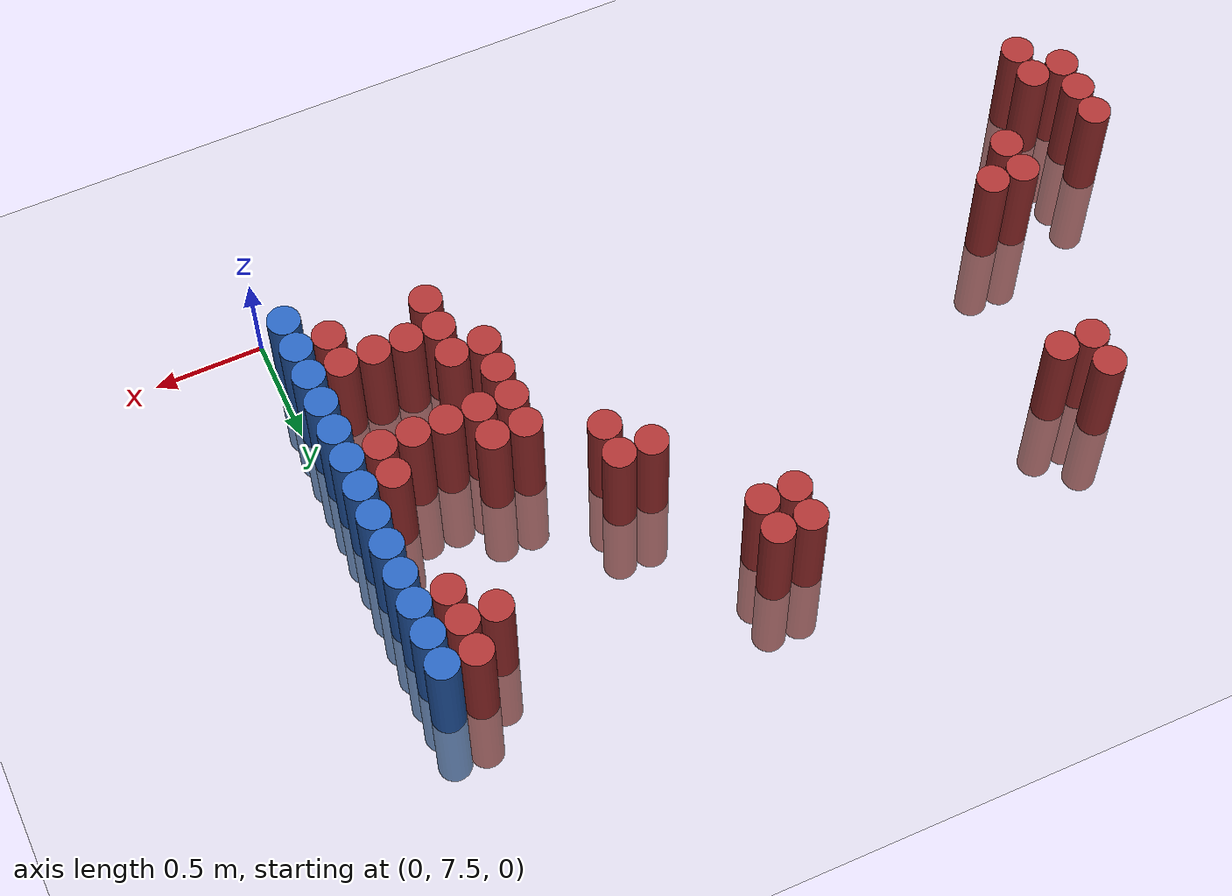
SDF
<sdf version="1.6">
 <world name="default">
  <model name="ground_plane">
   <static>1</static>
   <link name="link">
    <collision name="collision">
     <geometry><plane><normal>0 0 1</normal><size>100 100</size></plane></geometry>
     <surface><friction><ode><mu>100</mu><mu2>50</mu2></ode></friction></surface>
    </collision>
    <visual name="visual">
     <cast_shadows>0</cast_shadows>
     <geometry><plane><normal>0 0 1</normal><size>100 100</size></plane></geometry>
     <material>
      <script><uri>file://media/materials/scripts/gazebo.material</uri><name>Gazebo/Grey</name></script>
     </material>
    </visual>
   </link>
  </model>
  <model name="unit_cylinder_155">
   <static>1</static>
   <pose>-3.825000 7.875000 0.000000 0.000000 0.000000 0.000000</pose>
   <link name="link">
    <inertial>
     <mass>1</mass>
     <inertia><ixx>0.145833</ixx><ixy>0</ixy><ixz>0</ixz><iyy>0.145833</iyy><iyz>0</iyz><izz>0.125</izz></inertia>
    </inertial>
    <collision name="collision">
     <geometry><cylinder><radius>0.075000</radius><length>1</length></cylinder></geometry>
    </collision>
    <visual name="visual">
     <geometry><cylinder><radius>0.075000</radius><length>1</length></cylinder></geometry>
     <material>
      <ambient>0.648000 0.192000 0.192000 1</ambient>
      <diffuse>0.648000 0.192000 0.192000 1</diffuse>
     </material>
     <material>
      <script><name>Gazebo/Grey</name><uri>file://media/materials/scripts/gazebo.material</uri></script>
     </material>
    </visual>
   </link>
  </model>
  <model name="unit_cylinder_156">
   <static>1</static>
   <pose>-3.825000 8.025000 0.000000 0.000000 0.000000 0.000000</pose>
   <link name="link">
    <inertial>
     <mass>1</mass>
     <inertia><ixx>0.145833</ixx><ixy>0</ixy><ixz>0</ixz><iyy>0.145833</iyy><iyz>0</iyz><izz>0.125</izz></inertia>
    </inertial>
    <collision name="collision">
     <geometry><cylinder><radius>0.075000</radius><length>1</length></cylinder></geometry>
    </collision>
    <visual name="visual">
     <geometry><cylinder><radius>0.075000</radius><length>1</length></cylinder></geometry>
     <material>
      <ambient>0.648000 0.192000 0.192000 1</ambient>
      <diffuse>0.648000 0.192000 0.192000 1</diffuse>
     </material>
     <material>
      <script><name>Gazebo/Grey</name><uri>file://media/materials/scripts/gazebo.material</uri></script>
     </material>
    </visual>
   </link>
  </model>
  <model name="unit_cylinder_157">
   <static>1</static>
   <pose>-3.825000 8.175000 0.000000 0.000000 0.000000 0.000000</pose>
   <link name="link">
    <inertial>
     <mass>1</mass>
     <inertia><ixx>0.145833</ixx><ixy>0</ixy><ixz>0</ixz><iyy>0.145833</iyy><iyz>0</iyz><izz>0.125</izz></inertia>
    </inertial>
    <collision name="collision">
     <geometry><cylinder><radius>0.075000</radius><length>1</length></cylinder></geometry>
    </collision>
    <visual name="visual">
     <geometry><cylinder><radius>0.075000</radius><length>1</length></cylinder></geometry>
     <material>
      <ambient>0.648000 0.192000 0.192000 1</ambient>
      <diffuse>0.648000 0.192000 0.192000 1</diffuse>
     </material>
     <material>
      <script><name>Gazebo/Grey</name><uri>file://media/materials/scripts/gazebo.material</uri></script>
     </material>
    </visual>
   </link>
  </model>
  <model name="unit_cylinder_162">
   <static>1</static>
   <pose>-3.675000 7.725000 0.000000 0.000000 0.000000 0.000000</pose>
   <link name="link">
    <inertial>
     <mass>1</mass>
     <inertia><ixx>0.145833</ixx><ixy>0</ixy><ixz>0</ixz><iyy>0.145833</iyy><iyz>0</iyz><izz>0.125</izz></inertia>
    </inertial>
    <collision name="collision">
     <geometry><cylinder><radius>0.075000</radius><length>1</length></cylinder></geometry>
    </collision>
    <visual name="visual">
     <geometry><cylinder><radius>0.075000</radius><length>1</length></cylinder></geometry>
     <material>
      <ambient>0.648000 0.192000 0.192000 1</ambient>
      <diffuse>0.648000 0.192000 0.192000 1</diffuse>
     </material>
     <material>
      <script><name>Gazebo/Grey</name><uri>file://media/materials/scripts/gazebo.material</uri></script>
     </material>
    </visual>
   </link>
  </model>
  <model name="unit_cylinder_163">
   <static>1</static>
   <pose>-3.675000 7.875000 0.000000 0.000000 0.000000 0.000000</pose>
   <link name="link">
    <inertial>
     <mass>1</mass>
     <inertia><ixx>0.145833</ixx><ixy>0</ixy><ixz>0</ixz><iyy>0.145833</iyy><iyz>0</iyz><izz>0.125</izz></inertia>
    </inertial>
    <collision name="collision">
     <geometry><cylinder><radius>0.075000</radius><length>1</length></cylinder></geometry>
    </collision>
    <visual name="visual">
     <geometry><cylinder><radius>0.075000</radius><length>1</length></cylinder></geometry>
     <material>
      <ambient>0.648000 0.192000 0.192000 1</ambient>
      <diffuse>0.648000 0.192000 0.192000 1</diffuse>
     </material>
     <material>
      <script><name>Gazebo/Grey</name><uri>file://media/materials/scripts/gazebo.material</uri></script>
     </material>
    </visual>
   </link>
  </model>
  <model name="unit_cylinder_165">
   <static>1</static>
   <pose>-3.375000 8.175000 0.000000 0.000000 0.000000 0.000000</pose>
   <link name="link">
    <inertial>
     <mass>1</mass>
     <inertia><ixx>0.145833</ixx><ixy>0</ixy><ixz>0</ixz><iyy>0.145833</iyy><iyz>0</iyz><izz>0.125</izz></inertia>
    </inertial>
    <collision name="collision">
     <geometry><cylinder><radius>0.075000</radius><length>1</length></cylinder></geometry>
    </collision>
    <visual name="visual">
     <geometry><cylinder><radius>0.075000</radius><length>1</length></cylinder></geometry>
     <material>
      <ambient>0.648000 0.192000 0.192000 1</ambient>
      <diffuse>0.648000 0.192000 0.192000 1</diffuse>
     </material>
     <material>
      <script><name>Gazebo/Grey</name><uri>file://media/materials/scripts/gazebo.material</uri></script>
     </material>
    </visual>
   </link>
  </model>
  <model name="unit_cylinder_166">
   <static>1</static>
   <pose>-3.375000 8.325000 0.000000 0.000000 0.000000 0.000000</pose>
   <link name="link">
    <inertial>
     <mass>1</mass>
     <inertia><ixx>0.145833</ixx><ixy>0</ixy><ixz>0</ixz><iyy>0.145833</iyy><iyz>0</iyz><izz>0.125</izz></inertia>
    </inertial>
    <collision name="collision">
     <geometry><cylinder><radius>0.075000</radius><length>1</length></cylinder></geometry>
    </collision>
    <visual name="visual">
     <geometry><cylinder><radius>0.075000</radius><length>1</length></cylinder></geometry>
     <material>
      <ambient>0.648000 0.192000 0.192000 1</ambient>
      <diffuse>0.648000 0.192000 0.192000 1</diffuse>
     </material>
     <material>
      <script><name>Gazebo/Grey</name><uri>file://media/materials/scripts/gazebo.material</uri></script>
     </material>
    </visual>
   </link>
  </model>
  <model name="unit_cylinder_167">
   <static>1</static>
   <pose>-3.225000 8.325000 0.000000 0.000000 0.000000 0.000000</pose>
   <link name="link">
    <inertial>
     <mass>1</mass>
     <inertia><ixx>0.145833</ixx><ixy>0</ixy><ixz>0</ixz><iyy>0.145833</iyy><iyz>0</iyz><izz>0.125</izz></inertia>
    </inertial>
    <collision name="collision">
     <geometry><cylinder><radius>0.075000</radius><length>1</length></cylinder></geometry>
    </collision>
    <visual name="visual">
     <geometry><cylinder><radius>0.075000</radius><length>1</length></cylinder></geometry>
     <material>
      <ambient>0.648000 0.192000 0.192000 1</ambient>
      <diffuse>0.648000 0.192000 0.192000 1</diffuse>
     </material>
     <material>
      <script><name>Gazebo/Grey</name><uri>file://media/materials/scripts/gazebo.material</uri></script>
     </material>
    </visual>
   </link>
  </model>
  <model name="unit_cylinder_168">
   <static>1</static>
   <pose>-3.225000 9.225000 0.000000 0.000000 0.000000 0.000000</pose>
   <link name="link">
    <inertial>
     <mass>1</mass>
     <inertia><ixx>0.145833</ixx><ixy>0</ixy><ixz>0</ixz><iyy>0.145833</iyy><iyz>0</iyz><izz>0.125</izz></inertia>
    </inertial>
    <collision name="collision">
     <geometry><cylinder><radius>0.075000</radius><length>1</length></cylinder></geometry>
    </collision>
    <visual name="visual">
     <geometry><cylinder><radius>0.075000</radius><length>1</length></cylinder></geometry>
     <material>
      <ambient>0.648000 0.192000 0.192000 1</ambient>
      <diffuse>0.648000 0.192000 0.192000 1</diffuse>
     </material>
     <material>
      <script><name>Gazebo/Grey</name><uri>file://media/materials/scripts/gazebo.material</uri></script>
     </material>
    </visual>
   </link>
  </model>
  <model name="unit_cylinder_169">
   <static>1</static>
   <pose>-3.225000 9.375000 0.000000 0.000000 0.000000 0.000000</pose>
   <link name="link">
    <inertial>
     <mass>1</mass>
     <inertia><ixx>0.145833</ixx><ixy>0</ixy><ixz>0</ixz><iyy>0.145833</iyy><iyz>0</iyz><izz>0.125</izz></inertia>
    </inertial>
    <collision name="collision">
     <geometry><cylinder><radius>0.075000</radius><length>1</length></cylinder></geometry>
    </collision>
    <visual name="visual">
     <geometry><cylinder><radius>0.075000</radius><length>1</length></cylinder></geometry>
     <material>
      <ambient>0.648000 0.192000 0.192000 1</ambient>
      <diffuse>0.648000 0.192000 0.192000 1</diffuse>
     </material>
     <material>
      <script><name>Gazebo/Grey</name><uri>file://media/materials/scripts/gazebo.material</uri></script>
     </material>
    </visual>
   </link>
  </model>
  <model name="unit_cylinder_170">
   <static>1</static>
   <pose>-3.075000 9.225000 0.000000 0.000000 0.000000 0.000000</pose>
   <link name="link">
    <inertial>
     <mass>1</mass>
     <inertia><ixx>0.145833</ixx><ixy>0</ixy><ixz>0</ixz><iyy>0.145833</iyy><iyz>0</iyz><izz>0.125</izz></inertia>
    </inertial>
    <collision name="collision">
     <geometry><cylinder><radius>0.075000</radius><length>1</length></cylinder></geometry>
    </collision>
    <visual name="visual">
     <geometry><cylinder><radius>0.075000</radius><length>1</length></cylinder></geometry>
     <material>
      <ambient>0.648000 0.192000 0.192000 1</ambient>
      <diffuse>0.648000 0.192000 0.192000 1</diffuse>
     </material>
     <material>
      <script><name>Gazebo/Grey</name><uri>file://media/materials/scripts/gazebo.material</uri></script>
     </material>
    </visual>
   </link>
  </model>
  <model name="unit_cylinder_177">
   <static>1</static>
   <pose>-1.725000 9.375000 0.000000 0.000000 0.000000 0.000000</pose>
   <link name="link">
    <inertial>
     <mass>1</mass>
     <inertia><ixx>0.145833</ixx><ixy>0</ixy><ixz>0</ixz><iyy>0.145833</iyy><iyz>0</iyz><izz>0.125</izz></inertia>
    </inertial>
    <collision name="collision">
     <geometry><cylinder><radius>0.075000</radius><length>1</length></cylinder></geometry>
    </collision>
    <visual name="visual">
     <geometry><cylinder><radius>0.075000</radius><length>1</length></cylinder></geometry>
     <material>
      <ambient>0.648000 0.192000 0.192000 1</ambient>
      <diffuse>0.648000 0.192000 0.192000 1</diffuse>
     </material>
     <material>
      <script><name>Gazebo/Grey</name><uri>file://media/materials/scripts/gazebo.material</uri></script>
     </material>
    </visual>
   </link>
  </model>
  <model name="unit_cylinder_178">
   <static>1</static>
   <pose>-1.725000 9.525000 0.000000 0.000000 0.000000 0.000000</pose>
   <link name="link">
    <inertial>
     <mass>1</mass>
     <inertia><ixx>0.145833</ixx><ixy>0</ixy><ixz>0</ixz><iyy>0.145833</iyy><iyz>0</iyz><izz>0.125</izz></inertia>
    </inertial>
    <collision name="collision">
     <geometry><cylinder><radius>0.075000</radius><length>1</length></cylinder></geometry>
    </collision>
    <visual name="visual">
     <geometry><cylinder><radius>0.075000</radius><length>1</length></cylinder></geometry>
     <material>
      <ambient>0.648000 0.192000 0.192000 1</ambient>
      <diffuse>0.648000 0.192000 0.192000 1</diffuse>
     </material>
     <material>
      <script><name>Gazebo/Grey</name><uri>file://media/materials/scripts/gazebo.material</uri></script>
     </material>
    </visual>
   </link>
  </model>
  <model name="unit_cylinder_181">
   <static>1</static>
   <pose>-1.575000 9.375000 0.000000 0.000000 0.000000 0.000000</pose>
   <link name="link">
    <inertial>
     <mass>1</mass>
     <inertia><ixx>0.145833</ixx><ixy>0</ixy><ixz>0</ixz><iyy>0.145833</iyy><iyz>0</iyz><izz>0.125</izz></inertia>
    </inertial>
    <collision name="collision">
     <geometry><cylinder><radius>0.075000</radius><length>1</length></cylinder></geometry>
    </collision>
    <visual name="visual">
     <geometry><cylinder><radius>0.075000</radius><length>1</length></cylinder></geometry>
     <material>
      <ambient>0.648000 0.192000 0.192000 1</ambient>
      <diffuse>0.648000 0.192000 0.192000 1</diffuse>
     </material>
     <material>
      <script><name>Gazebo/Grey</name><uri>file://media/materials/scripts/gazebo.material</uri></script>
     </material>
    </visual>
   </link>
  </model>
  <model name="unit_cylinder_182">
   <static>1</static>
   <pose>-1.575000 9.525000 0.000000 0.000000 0.000000 0.000000</pose>
   <link name="link">
    <inertial>
     <mass>1</mass>
     <inertia><ixx>0.145833</ixx><ixy>0</ixy><ixz>0</ixz><iyy>0.145833</iyy><iyz>0</iyz><izz>0.125</izz></inertia>
    </inertial>
    <collision name="collision">
     <geometry><cylinder><radius>0.075000</radius><length>1</length></cylinder></geometry>
    </collision>
    <visual name="visual">
     <geometry><cylinder><radius>0.075000</radius><length>1</length></cylinder></geometry>
     <material>
      <ambient>0.648000 0.192000 0.192000 1</ambient>
      <diffuse>0.648000 0.192000 0.192000 1</diffuse>
     </material>
     <material>
      <script><name>Gazebo/Grey</name><uri>file://media/materials/scripts/gazebo.material</uri></script>
     </material>
    </visual>
   </link>
  </model>
  <model name="unit_cylinder_186">
   <static>1</static>
   <pose>-1.275000 8.925000 0.000000 0.000000 0.000000 0.000000</pose>
   <link name="link">
    <inertial>
     <mass>1</mass>
     <inertia><ixx>0.145833</ixx><ixy>0</ixy><ixz>0</ixz><iyy>0.145833</iyy><iyz>0</iyz><izz>0.125</izz></inertia>
    </inertial>
    <collision name="collision">
     <geometry><cylinder><radius>0.075000</radius><length>1</length></cylinder></geometry>
    </collision>
    <visual name="visual">
     <geometry><cylinder><radius>0.075000</radius><length>1</length></cylinder></geometry>
     <material>
      <ambient>0.648000 0.192000 0.192000 1</ambient>
      <diffuse>0.648000 0.192000 0.192000 1</diffuse>
     </material>
     <material>
      <script><name>Gazebo/Grey</name><uri>file://media/materials/scripts/gazebo.material</uri></script>
     </material>
    </visual>
   </link>
  </model>
  <model name="unit_cylinder_194">
   <static>1</static>
   <pose>-1.125000 8.775000 0.000000 0.000000 0.000000 0.000000</pose>
   <link name="link">
    <inertial>
     <mass>1</mass>
     <inertia><ixx>0.145833</ixx><ixy>0</ixy><ixz>0</ixz><iyy>0.145833</iyy><iyz>0</iyz><izz>0.125</izz></inertia>
    </inertial>
    <collision name="collision">
     <geometry><cylinder><radius>0.075000</radius><length>1</length></cylinder></geometry>
    </collision>
    <visual name="visual">
     <geometry><cylinder><radius>0.075000</radius><length>1</length></cylinder></geometry>
     <material>
      <ambient>0.648000 0.192000 0.192000 1</ambient>
      <diffuse>0.648000 0.192000 0.192000 1</diffuse>
     </material>
     <material>
      <script><name>Gazebo/Grey</name><uri>file://media/materials/scripts/gazebo.material</uri></script>
     </material>
    </visual>
   </link>
  </model>
  <model name="unit_cylinder_195">
   <static>1</static>
   <pose>-1.125000 8.925000 0.000000 0.000000 0.000000 0.000000</pose>
   <link name="link">
    <inertial>
     <mass>1</mass>
     <inertia><ixx>0.145833</ixx><ixy>0</ixy><ixz>0</ixz><iyy>0.145833</iyy><iyz>0</iyz><izz>0.125</izz></inertia>
    </inertial>
    <collision name="collision">
     <geometry><cylinder><radius>0.075000</radius><length>1</length></cylinder></geometry>
    </collision>
    <visual name="visual">
     <geometry><cylinder><radius>0.075000</radius><length>1</length></cylinder></geometry>
     <material>
      <ambient>0.648000 0.192000 0.192000 1</ambient>
      <diffuse>0.648000 0.192000 0.192000 1</diffuse>
     </material>
     <material>
      <script><name>Gazebo/Grey</name><uri>file://media/materials/scripts/gazebo.material</uri></script>
     </material>
    </visual>
   </link>
  </model>
  <model name="unit_cylinder_207">
   <static>1</static>
   <pose>-0.825000 8.175000 0.000000 0.000000 0.000000 0.000000</pose>
   <link name="link">
    <inertial>
     <mass>1</mass>
     <inertia><ixx>0.145833</ixx><ixy>0</ixy><ixz>0</ixz><iyy>0.145833</iyy><iyz>0</iyz><izz>0.125</izz></inertia>
    </inertial>
    <collision name="collision">
     <geometry><cylinder><radius>0.075000</radius><length>1</length></cylinder></geometry>
    </collision>
    <visual name="visual">
     <geometry><cylinder><radius>0.075000</radius><length>1</length></cylinder></geometry>
     <material>
      <ambient>0.648000 0.192000 0.192000 1</ambient>
      <diffuse>0.648000 0.192000 0.192000 1</diffuse>
     </material>
     <material>
      <script><name>Gazebo/Grey</name><uri>file://media/materials/scripts/gazebo.material</uri></script>
     </material>
    </visual>
   </link>
  </model>
  <model name="unit_cylinder_208">
   <static>1</static>
   <pose>-0.825000 8.325000 0.000000 0.000000 0.000000 0.000000</pose>
   <link name="link">
    <inertial>
     <mass>1</mass>
     <inertia><ixx>0.145833</ixx><ixy>0</ixy><ixz>0</ixz><iyy>0.145833</iyy><iyz>0</iyz><izz>0.125</izz></inertia>
    </inertial>
    <collision name="collision">
     <geometry><cylinder><radius>0.075000</radius><length>1</length></cylinder></geometry>
    </collision>
    <visual name="visual">
     <geometry><cylinder><radius>0.075000</radius><length>1</length></cylinder></geometry>
     <material>
      <ambient>0.648000 0.192000 0.192000 1</ambient>
      <diffuse>0.648000 0.192000 0.192000 1</diffuse>
     </material>
     <material>
      <script><name>Gazebo/Grey</name><uri>file://media/materials/scripts/gazebo.material</uri></script>
     </material>
    </visual>
   </link>
  </model>
  <model name="unit_cylinder_209">
   <static>1</static>
   <pose>-0.825000 8.475000 0.000000 0.000000 0.000000 0.000000</pose>
   <link name="link">
    <inertial>
     <mass>1</mass>
     <inertia><ixx>0.145833</ixx><ixy>0</ixy><ixz>0</ixz><iyy>0.145833</iyy><iyz>0</iyz><izz>0.125</izz></inertia>
    </inertial>
    <collision name="collision">
     <geometry><cylinder><radius>0.075000</radius><length>1</length></cylinder></geometry>
    </collision>
    <visual name="visual">
     <geometry><cylinder><radius>0.075000</radius><length>1</length></cylinder></geometry>
     <material>
      <ambient>0.648000 0.192000 0.192000 1</ambient>
      <diffuse>0.648000 0.192000 0.192000 1</diffuse>
     </material>
     <material>
      <script><name>Gazebo/Grey</name><uri>file://media/materials/scripts/gazebo.material</uri></script>
     </material>
    </visual>
   </link>
  </model>
  <model name="unit_cylinder_210">
   <static>1</static>
   <pose>-0.825000 8.625000 0.000000 0.000000 0.000000 0.000000</pose>
   <link name="link">
    <inertial>
     <mass>1</mass>
     <inertia><ixx>0.145833</ixx><ixy>0</ixy><ixz>0</ixz><iyy>0.145833</iyy><iyz>0</iyz><izz>0.125</izz></inertia>
    </inertial>
    <collision name="collision">
     <geometry><cylinder><radius>0.075000</radius><length>1</length></cylinder></geometry>
    </collision>
    <visual name="visual">
     <geometry><cylinder><radius>0.075000</radius><length>1</length></cylinder></geometry>
     <material>
      <ambient>0.648000 0.192000 0.192000 1</ambient>
      <diffuse>0.648000 0.192000 0.192000 1</diffuse>
     </material>
     <material>
      <script><name>Gazebo/Grey</name><uri>file://media/materials/scripts/gazebo.material</uri></script>
     </material>
    </visual>
   </link>
  </model>
  <model name="unit_cylinder_211">
   <static>1</static>
   <pose>-0.675000 7.875000 0.000000 0.000000 0.000000 0.000000</pose>
   <link name="link">
    <inertial>
     <mass>1</mass>
     <inertia><ixx>0.145833</ixx><ixy>0</ixy><ixz>0</ixz><iyy>0.145833</iyy><iyz>0</iyz><izz>0.125</izz></inertia>
    </inertial>
    <collision name="collision">
     <geometry><cylinder><radius>0.075000</radius><length>1</length></cylinder></geometry>
    </collision>
    <visual name="visual">
     <geometry><cylinder><radius>0.075000</radius><length>1</length></cylinder></geometry>
     <material>
      <ambient>0.648000 0.192000 0.192000 1</ambient>
      <diffuse>0.648000 0.192000 0.192000 1</diffuse>
     </material>
     <material>
      <script><name>Gazebo/Grey</name><uri>file://media/materials/scripts/gazebo.material</uri></script>
     </material>
    </visual>
   </link>
  </model>
  <model name="unit_cylinder_212">
   <static>1</static>
   <pose>-0.675000 8.025000 0.000000 0.000000 0.000000 0.000000</pose>
   <link name="link">
    <inertial>
     <mass>1</mass>
     <inertia><ixx>0.145833</ixx><ixy>0</ixy><ixz>0</ixz><iyy>0.145833</iyy><iyz>0</iyz><izz>0.125</izz></inertia>
    </inertial>
    <collision name="collision">
     <geometry><cylinder><radius>0.075000</radius><length>1</length></cylinder></geometry>
    </collision>
    <visual name="visual">
     <geometry><cylinder><radius>0.075000</radius><length>1</length></cylinder></geometry>
     <material>
      <ambient>0.648000 0.192000 0.192000 1</ambient>
      <diffuse>0.648000 0.192000 0.192000 1</diffuse>
     </material>
     <material>
      <script><name>Gazebo/Grey</name><uri>file://media/materials/scripts/gazebo.material</uri></script>
     </material>
    </visual>
   </link>
  </model>
  <model name="unit_cylinder_213">
   <static>1</static>
   <pose>-0.675000 8.175000 0.000000 0.000000 0.000000 0.000000</pose>
   <link name="link">
    <inertial>
     <mass>1</mass>
     <inertia><ixx>0.145833</ixx><ixy>0</ixy><ixz>0</ixz><iyy>0.145833</iyy><iyz>0</iyz><izz>0.125</izz></inertia>
    </inertial>
    <collision name="collision">
     <geometry><cylinder><radius>0.075000</radius><length>1</length></cylinder></geometry>
    </collision>
    <visual name="visual">
     <geometry><cylinder><radius>0.075000</radius><length>1</length></cylinder></geometry>
     <material>
      <ambient>0.648000 0.192000 0.192000 1</ambient>
      <diffuse>0.648000 0.192000 0.192000 1</diffuse>
     </material>
     <material>
      <script><name>Gazebo/Grey</name><uri>file://media/materials/scripts/gazebo.material</uri></script>
     </material>
    </visual>
   </link>
  </model>
  <model name="unit_cylinder_214">
   <static>1</static>
   <pose>-0.675000 8.475000 0.000000 0.000000 0.000000 0.000000</pose>
   <link name="link">
    <inertial>
     <mass>1</mass>
     <inertia><ixx>0.145833</ixx><ixy>0</ixy><ixz>0</ixz><iyy>0.145833</iyy><iyz>0</iyz><izz>0.125</izz></inertia>
    </inertial>
    <collision name="collision">
     <geometry><cylinder><radius>0.075000</radius><length>1</length></cylinder></geometry>
    </collision>
    <visual name="visual">
     <geometry><cylinder><radius>0.075000</radius><length>1</length></cylinder></geometry>
     <material>
      <ambient>0.648000 0.192000 0.192000 1</ambient>
      <diffuse>0.648000 0.192000 0.192000 1</diffuse>
     </material>
     <material>
      <script><name>Gazebo/Grey</name><uri>file://media/materials/scripts/gazebo.material</uri></script>
     </material>
    </visual>
   </link>
  </model>
  <model name="unit_cylinder_215">
   <static>1</static>
   <pose>-0.675000 8.625000 0.000000 0.000000 0.000000 0.000000</pose>
   <link name="link">
    <inertial>
     <mass>1</mass>
     <inertia><ixx>0.145833</ixx><ixy>0</ixy><ixz>0</ixz><iyy>0.145833</iyy><iyz>0</iyz><izz>0.125</izz></inertia>
    </inertial>
    <collision name="collision">
     <geometry><cylinder><radius>0.075000</radius><length>1</length></cylinder></geometry>
    </collision>
    <visual name="visual">
     <geometry><cylinder><radius>0.075000</radius><length>1</length></cylinder></geometry>
     <material>
      <ambient>0.648000 0.192000 0.192000 1</ambient>
      <diffuse>0.648000 0.192000 0.192000 1</diffuse>
     </material>
     <material>
      <script><name>Gazebo/Grey</name><uri>file://media/materials/scripts/gazebo.material</uri></script>
     </material>
    </visual>
   </link>
  </model>
  <model name="unit_cylinder_216">
   <static>1</static>
   <pose>-0.525000 8.025000 0.000000 0.000000 0.000000 0.000000</pose>
   <link name="link">
    <inertial>
     <mass>1</mass>
     <inertia><ixx>0.145833</ixx><ixy>0</ixy><ixz>0</ixz><iyy>0.145833</iyy><iyz>0</iyz><izz>0.125</izz></inertia>
    </inertial>
    <collision name="collision">
     <geometry><cylinder><radius>0.075000</radius><length>1</length></cylinder></geometry>
    </collision>
    <visual name="visual">
     <geometry><cylinder><radius>0.075000</radius><length>1</length></cylinder></geometry>
     <material>
      <ambient>0.648000 0.192000 0.192000 1</ambient>
      <diffuse>0.648000 0.192000 0.192000 1</diffuse>
     </material>
     <material>
      <script><name>Gazebo/Grey</name><uri>file://media/materials/scripts/gazebo.material</uri></script>
     </material>
    </visual>
   </link>
  </model>
  <model name="unit_cylinder_217">
   <static>1</static>
   <pose>-0.525000 8.475000 0.000000 0.000000 0.000000 0.000000</pose>
   <link name="link">
    <inertial>
     <mass>1</mass>
     <inertia><ixx>0.145833</ixx><ixy>0</ixy><ixz>0</ixz><iyy>0.145833</iyy><iyz>0</iyz><izz>0.125</izz></inertia>
    </inertial>
    <collision name="collision">
     <geometry><cylinder><radius>0.075000</radius><length>1</length></cylinder></geometry>
    </collision>
    <visual name="visual">
     <geometry><cylinder><radius>0.075000</radius><length>1</length></cylinder></geometry>
     <material>
      <ambient>0.648000 0.192000 0.192000 1</ambient>
      <diffuse>0.648000 0.192000 0.192000 1</diffuse>
     </material>
     <material>
      <script><name>Gazebo/Grey</name><uri>file://media/materials/scripts/gazebo.material</uri></script>
     </material>
    </visual>
   </link>
  </model>
  <model name="unit_cylinder_218">
   <static>1</static>
   <pose>-0.375000 8.025000 0.000000 0.000000 0.000000 0.000000</pose>
   <link name="link">
    <inertial>
     <mass>1</mass>
     <inertia><ixx>0.145833</ixx><ixy>0</ixy><ixz>0</ixz><iyy>0.145833</iyy><iyz>0</iyz><izz>0.125</izz></inertia>
    </inertial>
    <collision name="collision">
     <geometry><cylinder><radius>0.075000</radius><length>1</length></cylinder></geometry>
    </collision>
    <visual name="visual">
     <geometry><cylinder><radius>0.075000</radius><length>1</length></cylinder></geometry>
     <material>
      <ambient>0.648000 0.192000 0.192000 1</ambient>
      <diffuse>0.648000 0.192000 0.192000 1</diffuse>
     </material>
     <material>
      <script><name>Gazebo/Grey</name><uri>file://media/materials/scripts/gazebo.material</uri></script>
     </material>
    </visual>
   </link>
  </model>
  <model name="unit_cylinder_219">
   <static>1</static>
   <pose>-0.375000 8.475000 0.000000 0.000000 0.000000 0.000000</pose>
   <link name="link">
    <inertial>
     <mass>1</mass>
     <inertia><ixx>0.145833</ixx><ixy>0</ixy><ixz>0</ixz><iyy>0.145833</iyy><iyz>0</iyz><izz>0.125</izz></inertia>
    </inertial>
    <collision name="collision">
     <geometry><cylinder><radius>0.075000</radius><length>1</length></cylinder></geometry>
    </collision>
    <visual name="visual">
     <geometry><cylinder><radius>0.075000</radius><length>1</length></cylinder></geometry>
     <material>
      <ambient>0.648000 0.192000 0.192000 1</ambient>
      <diffuse>0.648000 0.192000 0.192000 1</diffuse>
     </material>
     <material>
      <script><name>Gazebo/Grey</name><uri>file://media/materials/scripts/gazebo.material</uri></script>
     </material>
    </visual>
   </link>
  </model>
  <model name="unit_cylinder_220">
   <static>1</static>
   <pose>-0.375000 9.375000 0.000000 0.000000 0.000000 0.000000</pose>
   <link name="link">
    <inertial>
     <mass>1</mass>
     <inertia><ixx>0.145833</ixx><ixy>0</ixy><ixz>0</ixz><iyy>0.145833</iyy><iyz>0</iyz><izz>0.125</izz></inertia>
    </inertial>
    <collision name="collision">
     <geometry><cylinder><radius>0.075000</radius><length>1</length></cylinder></geometry>
    </collision>
    <visual name="visual">
     <geometry><cylinder><radius>0.075000</radius><length>1</length></cylinder></geometry>
     <material>
      <ambient>0.648000 0.192000 0.192000 1</ambient>
      <diffuse>0.648000 0.192000 0.192000 1</diffuse>
     </material>
     <material>
      <script><name>Gazebo/Grey</name><uri>file://media/materials/scripts/gazebo.material</uri></script>
     </material>
    </visual>
   </link>
  </model>
  <model name="unit_cylinder_223">
   <static>1</static>
   <pose>-0.225000 7.875000 0.000000 0.000000 0.000000 0.000000</pose>
   <link name="link">
    <inertial>
     <mass>1</mass>
     <inertia><ixx>0.145833</ixx><ixy>0</ixy><ixz>0</ixz><iyy>0.145833</iyy><iyz>0</iyz><izz>0.125</izz></inertia>
    </inertial>
    <collision name="collision">
     <geometry><cylinder><radius>0.075000</radius><length>1</length></cylinder></geometry>
    </collision>
    <visual name="visual">
     <geometry><cylinder><radius>0.075000</radius><length>1</length></cylinder></geometry>
     <material>
      <ambient>0.648000 0.192000 0.192000 1</ambient>
      <diffuse>0.648000 0.192000 0.192000 1</diffuse>
     </material>
     <material>
      <script><name>Gazebo/Grey</name><uri>file://media/materials/scripts/gazebo.material</uri></script>
     </material>
    </visual>
   </link>
  </model>
  <model name="unit_cylinder_224">
   <static>1</static>
   <pose>-0.225000 8.025000 0.000000 0.000000 0.000000 0.000000</pose>
   <link name="link">
    <inertial>
     <mass>1</mass>
     <inertia><ixx>0.145833</ixx><ixy>0</ixy><ixz>0</ixz><iyy>0.145833</iyy><iyz>0</iyz><izz>0.125</izz></inertia>
    </inertial>
    <collision name="collision">
     <geometry><cylinder><radius>0.075000</radius><length>1</length></cylinder></geometry>
    </collision>
    <visual name="visual">
     <geometry><cylinder><radius>0.075000</radius><length>1</length></cylinder></geometry>
     <material>
      <ambient>0.648000 0.192000 0.192000 1</ambient>
      <diffuse>0.648000 0.192000 0.192000 1</diffuse>
     </material>
     <material>
      <script><name>Gazebo/Grey</name><uri>file://media/materials/scripts/gazebo.material</uri></script>
     </material>
    </visual>
   </link>
  </model>
  <model name="unit_cylinder_225">
   <static>1</static>
   <pose>-0.225000 8.475000 0.000000 0.000000 0.000000 0.000000</pose>
   <link name="link">
    <inertial>
     <mass>1</mass>
     <inertia><ixx>0.145833</ixx><ixy>0</ixy><ixz>0</ixz><iyy>0.145833</iyy><iyz>0</iyz><izz>0.125</izz></inertia>
    </inertial>
    <collision name="collision">
     <geometry><cylinder><radius>0.075000</radius><length>1</length></cylinder></geometry>
    </collision>
    <visual name="visual">
     <geometry><cylinder><radius>0.075000</radius><length>1</length></cylinder></geometry>
     <material>
      <ambient>0.648000 0.192000 0.192000 1</ambient>
      <diffuse>0.648000 0.192000 0.192000 1</diffuse>
     </material>
     <material>
      <script><name>Gazebo/Grey</name><uri>file://media/materials/scripts/gazebo.material</uri></script>
     </material>
    </visual>
   </link>
  </model>
  <model name="unit_cylinder_226">
   <static>1</static>
   <pose>-0.225000 8.625000 0.000000 0.000000 0.000000 0.000000</pose>
   <link name="link">
    <inertial>
     <mass>1</mass>
     <inertia><ixx>0.145833</ixx><ixy>0</ixy><ixz>0</ixz><iyy>0.145833</iyy><iyz>0</iyz><izz>0.125</izz></inertia>
    </inertial>
    <collision name="collision">
     <geometry><cylinder><radius>0.075000</radius><length>1</length></cylinder></geometry>
    </collision>
    <visual name="visual">
     <geometry><cylinder><radius>0.075000</radius><length>1</length></cylinder></geometry>
     <material>
      <ambient>0.648000 0.192000 0.192000 1</ambient>
      <diffuse>0.648000 0.192000 0.192000 1</diffuse>
     </material>
     <material>
      <script><name>Gazebo/Grey</name><uri>file://media/materials/scripts/gazebo.material</uri></script>
     </material>
    </visual>
   </link>
  </model>
  <model name="unit_cylinder_227">
   <static>1</static>
   <pose>-0.225000 9.225000 0.000000 0.000000 0.000000 0.000000</pose>
   <link name="link">
    <inertial>
     <mass>1</mass>
     <inertia><ixx>0.145833</ixx><ixy>0</ixy><ixz>0</ixz><iyy>0.145833</iyy><iyz>0</iyz><izz>0.125</izz></inertia>
    </inertial>
    <collision name="collision">
     <geometry><cylinder><radius>0.075000</radius><length>1</length></cylinder></geometry>
    </collision>
    <visual name="visual">
     <geometry><cylinder><radius>0.075000</radius><length>1</length></cylinder></geometry>
     <material>
      <ambient>0.648000 0.192000 0.192000 1</ambient>
      <diffuse>0.648000 0.192000 0.192000 1</diffuse>
     </material>
     <material>
      <script><name>Gazebo/Grey</name><uri>file://media/materials/scripts/gazebo.material</uri></script>
     </material>
    </visual>
   </link>
  </model>
  <model name="unit_cylinder_228">
   <static>1</static>
   <pose>-0.225000 9.375000 0.000000 0.000000 0.000000 0.000000</pose>
   <link name="link">
    <inertial>
     <mass>1</mass>
     <inertia><ixx>0.145833</ixx><ixy>0</ixy><ixz>0</ixz><iyy>0.145833</iyy><iyz>0</iyz><izz>0.125</izz></inertia>
    </inertial>
    <collision name="collision">
     <geometry><cylinder><radius>0.075000</radius><length>1</length></cylinder></geometry>
    </collision>
    <visual name="visual">
     <geometry><cylinder><radius>0.075000</radius><length>1</length></cylinder></geometry>
     <material>
      <ambient>0.648000 0.192000 0.192000 1</ambient>
      <diffuse>0.648000 0.192000 0.192000 1</diffuse>
     </material>
     <material>
      <script><name>Gazebo/Grey</name><uri>file://media/materials/scripts/gazebo.material</uri></script>
     </material>
    </visual>
   </link>
  </model>
  <model name="unit_cylinder_229">
   <static>1</static>
   <pose>-0.225000 9.525000 0.000000 0.000000 0.000000 0.000000</pose>
   <link name="link">
    <inertial>
     <mass>1</mass>
     <inertia><ixx>0.145833</ixx><ixy>0</ixy><ixz>0</ixz><iyy>0.145833</iyy><iyz>0</iyz><izz>0.125</izz></inertia>
    </inertial>
    <collision name="collision">
     <geometry><cylinder><radius>0.075000</radius><length>1</length></cylinder></geometry>
    </collision>
    <visual name="visual">
     <geometry><cylinder><radius>0.075000</radius><length>1</length></cylinder></geometry>
     <material>
      <ambient>0.648000 0.192000 0.192000 1</ambient>
      <diffuse>0.648000 0.192000 0.192000 1</diffuse>
     </material>
     <material>
      <script><name>Gazebo/Grey</name><uri>file://media/materials/scripts/gazebo.material</uri></script>
     </material>
    </visual>
   </link>
  </model>
  <model name="unit_cylinder_247">
   <static>1</static>
   <pose>-0.075000 7.725000 0.000000 0.000000 0.000000 0.000000</pose>
   <link name="link">
    <inertial>
     <mass>1</mass>
     <inertia><ixx>0.145833</ixx><ixy>0</ixy><ixz>0</ixz><iyy>0.145833</iyy><iyz>0</iyz><izz>0.125</izz></inertia>
    </inertial>
    <collision name="collision">
     <geometry><cylinder><radius>0.075000</radius><length>1</length></cylinder></geometry>
    </collision>
    <visual name="visual">
     <geometry><cylinder><radius>0.075000</radius><length>1</length></cylinder></geometry>
     <material>
      <ambient>0.152000 0.379000 0.720000 1</ambient>
      <diffuse>0.152000 0.379000 0.720000 1</diffuse>
     </material>
     <material>
      <script><name>Gazebo/Grey</name><uri>file://media/materials/scripts/gazebo.material</uri></script>
     </material>
    </visual>
   </link>
  </model>
  <model name="unit_cylinder_248">
   <static>1</static>
   <pose>-0.075000 7.875000 0.000000 0.000000 0.000000 0.000000</pose>
   <link name="link">
    <inertial>
     <mass>1</mass>
     <inertia><ixx>0.145833</ixx><ixy>0</ixy><ixz>0</ixz><iyy>0.145833</iyy><iyz>0</iyz><izz>0.125</izz></inertia>
    </inertial>
    <collision name="collision">
     <geometry><cylinder><radius>0.075000</radius><length>1</length></cylinder></geometry>
    </collision>
    <visual name="visual">
     <geometry><cylinder><radius>0.075000</radius><length>1</length></cylinder></geometry>
     <material>
      <ambient>0.152000 0.379000 0.720000 1</ambient>
      <diffuse>0.152000 0.379000 0.720000 1</diffuse>
     </material>
     <material>
      <script><name>Gazebo/Grey</name><uri>file://media/materials/scripts/gazebo.material</uri></script>
     </material>
    </visual>
   </link>
  </model>
  <model name="unit_cylinder_249">
   <static>1</static>
   <pose>-0.075000 8.025000 0.000000 0.000000 0.000000 0.000000</pose>
   <link name="link">
    <inertial>
     <mass>1</mass>
     <inertia><ixx>0.145833</ixx><ixy>0</ixy><ixz>0</ixz><iyy>0.145833</iyy><iyz>0</iyz><izz>0.125</izz></inertia>
    </inertial>
    <collision name="collision">
     <geometry><cylinder><radius>0.075000</radius><length>1</length></cylinder></geometry>
    </collision>
    <visual name="visual">
     <geometry><cylinder><radius>0.075000</radius><length>1</length></cylinder></geometry>
     <material>
      <ambient>0.152000 0.379000 0.720000 1</ambient>
      <diffuse>0.152000 0.379000 0.720000 1</diffuse>
     </material>
     <material>
      <script><name>Gazebo/Grey</name><uri>file://media/materials/scripts/gazebo.material</uri></script>
     </material>
    </visual>
   </link>
  </model>
  <model name="unit_cylinder_250">
   <static>1</static>
   <pose>-0.075000 8.175000 0.000000 0.000000 0.000000 0.000000</pose>
   <link name="link">
    <inertial>
     <mass>1</mass>
     <inertia><ixx>0.145833</ixx><ixy>0</ixy><ixz>0</ixz><iyy>0.145833</iyy><iyz>0</iyz><izz>0.125</izz></inertia>
    </inertial>
    <collision name="collision">
     <geometry><cylinder><radius>0.075000</radius><length>1</length></cylinder></geometry>
    </collision>
    <visual name="visual">
     <geometry><cylinder><radius>0.075000</radius><length>1</length></cylinder></geometry>
     <material>
      <ambient>0.152000 0.379000 0.720000 1</ambient>
      <diffuse>0.152000 0.379000 0.720000 1</diffuse>
     </material>
     <material>
      <script><name>Gazebo/Grey</name><uri>file://media/materials/scripts/gazebo.material</uri></script>
     </material>
    </visual>
   </link>
  </model>
  <model name="unit_cylinder_251">
   <static>1</static>
   <pose>-0.075000 8.325000 0.000000 0.000000 0.000000 0.000000</pose>
   <link name="link">
    <inertial>
     <mass>1</mass>
     <inertia><ixx>0.145833</ixx><ixy>0</ixy><ixz>0</ixz><iyy>0.145833</iyy><iyz>0</iyz><izz>0.125</izz></inertia>
    </inertial>
    <collision name="collision">
     <geometry><cylinder><radius>0.075000</radius><length>1</length></cylinder></geometry>
    </collision>
    <visual name="visual">
     <geometry><cylinder><radius>0.075000</radius><length>1</length></cylinder></geometry>
     <material>
      <ambient>0.152000 0.379000 0.720000 1</ambient>
      <diffuse>0.152000 0.379000 0.720000 1</diffuse>
     </material>
     <material>
      <script><name>Gazebo/Grey</name><uri>file://media/materials/scripts/gazebo.material</uri></script>
     </material>
    </visual>
   </link>
  </model>
  <model name="unit_cylinder_252">
   <static>1</static>
   <pose>-0.075000 8.475000 0.000000 0.000000 0.000000 0.000000</pose>
   <link name="link">
    <inertial>
     <mass>1</mass>
     <inertia><ixx>0.145833</ixx><ixy>0</ixy><ixz>0</ixz><iyy>0.145833</iyy><iyz>0</iyz><izz>0.125</izz></inertia>
    </inertial>
    <collision name="collision">
     <geometry><cylinder><radius>0.075000</radius><length>1</length></cylinder></geometry>
    </collision>
    <visual name="visual">
     <geometry><cylinder><radius>0.075000</radius><length>1</length></cylinder></geometry>
     <material>
      <ambient>0.152000 0.379000 0.720000 1</ambient>
      <diffuse>0.152000 0.379000 0.720000 1</diffuse>
     </material>
     <material>
      <script><name>Gazebo/Grey</name><uri>file://media/materials/scripts/gazebo.material</uri></script>
     </material>
    </visual>
   </link>
  </model>
  <model name="unit_cylinder_253">
   <static>1</static>
   <pose>-0.075000 8.625000 0.000000 0.000000 0.000000 0.000000</pose>
   <link name="link">
    <inertial>
     <mass>1</mass>
     <inertia><ixx>0.145833</ixx><ixy>0</ixy><ixz>0</ixz><iyy>0.145833</iyy><iyz>0</iyz><izz>0.125</izz></inertia>
    </inertial>
    <collision name="collision">
     <geometry><cylinder><radius>0.075000</radius><length>1</length></cylinder></geometry>
    </collision>
    <visual name="visual">
     <geometry><cylinder><radius>0.075000</radius><length>1</length></cylinder></geometry>
     <material>
      <ambient>0.152000 0.379000 0.720000 1</ambient>
      <diffuse>0.152000 0.379000 0.720000 1</diffuse>
     </material>
     <material>
      <script><name>Gazebo/Grey</name><uri>file://media/materials/scripts/gazebo.material</uri></script>
     </material>
    </visual>
   </link>
  </model>
  <model name="unit_cylinder_254">
   <static>1</static>
   <pose>-0.075000 8.775000 0.000000 0.000000 0.000000 0.000000</pose>
   <link name="link">
    <inertial>
     <mass>1</mass>
     <inertia><ixx>0.145833</ixx><ixy>0</ixy><ixz>0</ixz><iyy>0.145833</iyy><iyz>0</iyz><izz>0.125</izz></inertia>
    </inertial>
    <collision name="collision">
     <geometry><cylinder><radius>0.075000</radius><length>1</length></cylinder></geometry>
    </collision>
    <visual name="visual">
     <geometry><cylinder><radius>0.075000</radius><length>1</length></cylinder></geometry>
     <material>
      <ambient>0.152000 0.379000 0.720000 1</ambient>
      <diffuse>0.152000 0.379000 0.720000 1</diffuse>
     </material>
     <material>
      <script><name>Gazebo/Grey</name><uri>file://media/materials/scripts/gazebo.material</uri></script>
     </material>
    </visual>
   </link>
  </model>
  <model name="unit_cylinder_255">
   <static>1</static>
   <pose>-0.075000 8.925000 0.000000 0.000000 0.000000 0.000000</pose>
   <link name="link">
    <inertial>
     <mass>1</mass>
     <inertia><ixx>0.145833</ixx><ixy>0</ixy><ixz>0</ixz><iyy>0.145833</iyy><iyz>0</iyz><izz>0.125</izz></inertia>
    </inertial>
    <collision name="collision">
     <geometry><cylinder><radius>0.075000</radius><length>1</length></cylinder></geometry>
    </collision>
    <visual name="visual">
     <geometry><cylinder><radius>0.075000</radius><length>1</length></cylinder></geometry>
     <material>
      <ambient>0.152000 0.379000 0.720000 1</ambient>
      <diffuse>0.152000 0.379000 0.720000 1</diffuse>
     </material>
     <material>
      <script><name>Gazebo/Grey</name><uri>file://media/materials/scripts/gazebo.material</uri></script>
     </material>
    </visual>
   </link>
  </model>
  <model name="unit_cylinder_256">
   <static>1</static>
   <pose>-0.075000 9.075000 0.000000 0.000000 0.000000 0.000000</pose>
   <link name="link">
    <inertial>
     <mass>1</mass>
     <inertia><ixx>0.145833</ixx><ixy>0</ixy><ixz>0</ixz><iyy>0.145833</iyy><iyz>0</iyz><izz>0.125</izz></inertia>
    </inertial>
    <collision name="collision">
     <geometry><cylinder><radius>0.075000</radius><length>1</length></cylinder></geometry>
    </collision>
    <visual name="visual">
     <geometry><cylinder><radius>0.075000</radius><length>1</length></cylinder></geometry>
     <material>
      <ambient>0.152000 0.379000 0.720000 1</ambient>
      <diffuse>0.152000 0.379000 0.720000 1</diffuse>
     </material>
     <material>
      <script><name>Gazebo/Grey</name><uri>file://media/materials/scripts/gazebo.material</uri></script>
     </material>
    </visual>
   </link>
  </model>
  <model name="unit_cylinder_257">
   <static>1</static>
   <pose>-0.075000 9.225000 0.000000 0.000000 0.000000 0.000000</pose>
   <link name="link">
    <inertial>
     <mass>1</mass>
     <inertia><ixx>0.145833</ixx><ixy>0</ixy><ixz>0</ixz><iyy>0.145833</iyy><iyz>0</iyz><izz>0.125</izz></inertia>
    </inertial>
    <collision name="collision">
     <geometry><cylinder><radius>0.075000</radius><length>1</length></cylinder></geometry>
    </collision>
    <visual name="visual">
     <geometry><cylinder><radius>0.075000</radius><length>1</length></cylinder></geometry>
     <material>
      <ambient>0.152000 0.379000 0.720000 1</ambient>
      <diffuse>0.152000 0.379000 0.720000 1</diffuse>
     </material>
     <material>
      <script><name>Gazebo/Grey</name><uri>file://media/materials/scripts/gazebo.material</uri></script>
     </material>
    </visual>
   </link>
  </model>
  <model name="unit_cylinder_258">
   <static>1</static>
   <pose>-0.075000 9.375000 0.000000 0.000000 0.000000 0.000000</pose>
   <link name="link">
    <inertial>
     <mass>1</mass>
     <inertia><ixx>0.145833</ixx><ixy>0</ixy><ixz>0</ixz><iyy>0.145833</iyy><iyz>0</iyz><izz>0.125</izz></inertia>
    </inertial>
    <collision name="collision">
     <geometry><cylinder><radius>0.075000</radius><length>1</length></cylinder></geometry>
    </collision>
    <visual name="visual">
     <geometry><cylinder><radius>0.075000</radius><length>1</length></cylinder></geometry>
     <material>
      <ambient>0.152000 0.379000 0.720000 1</ambient>
      <diffuse>0.152000 0.379000 0.720000 1</diffuse>
     </material>
     <material>
      <script><name>Gazebo/Grey</name><uri>file://media/materials/scripts/gazebo.material</uri></script>
     </material>
    </visual>
   </link>
  </model>
  <model name="unit_cylinder_259">
   <static>1</static>
   <pose>-0.075000 9.525000 0.000000 0.000000 0.000000 0.000000</pose>
   <link name="link">
    <inertial>
     <mass>1</mass>
     <inertia><ixx>0.145833</ixx><ixy>0</ixy><ixz>0</ixz><iyy>0.145833</iyy><iyz>0</iyz><izz>0.125</izz></inertia>
    </inertial>
    <collision name="collision">
     <geometry><cylinder><radius>0.075000</radius><length>1</length></cylinder></geometry>
    </collision>
    <visual name="visual">
     <geometry><cylinder><radius>0.075000</radius><length>1</length></cylinder></geometry>
     <material>
      <ambient>0.152000 0.379000 0.720000 1</ambient>
      <diffuse>0.152000 0.379000 0.720000 1</diffuse>
     </material>
     <material>
      <script><name>Gazebo/Grey</name><uri>file://media/materials/scripts/gazebo.material</uri></script>
     </material>
    </visual>
   </link>
  </model>
 </world>
</sdf>
